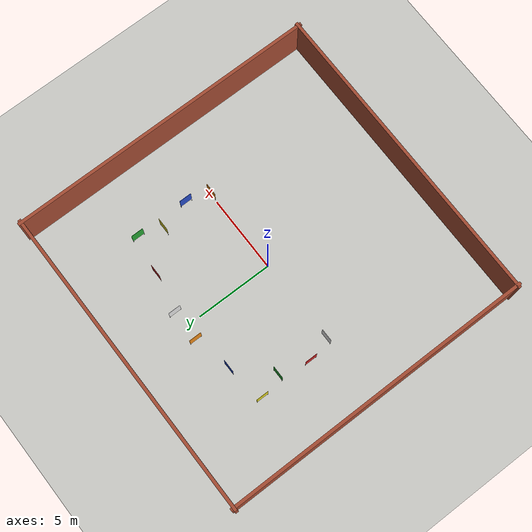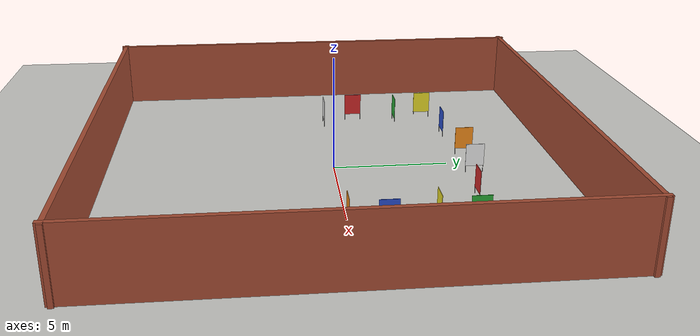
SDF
<?xml version="1.0" ?>
<!-- generated by gen_worlds.py — edit the generator, not this file -->
<sdf version="1.6">
  <world name="warehouse_w5_open_hall">
    <plugin name="gazebo_ros_state" filename="libgazebo_ros_state.so">
      <ros><namespace>/gazebo</namespace></ros>
      <update_rate>30.0</update_rate>
    </plugin>

    <physics type="ode">
      <real_time_update_rate>1000.0</real_time_update_rate>
      <max_step_size>0.001</max_step_size>
      <real_time_factor>1</real_time_factor>
    </physics>

    <scene>
      <ambient>0.28 0.28 0.28 1.0</ambient>
      <background>0.35 0.35 0.38 1.0</background>
      <shadows>true</shadows>
    </scene>

    <light name="light_centre" type="point">
      <pose>0 0 2.8 0 0 0</pose>
      <diffuse>0.32 0.32 0.30 1</diffuse>
      <specular>0.05 0.05 0.05 1</specular>
      <attenuation><range>20</range><constant>0.4</constant><linear>0.01</linear><quadratic>0.001</quadratic></attenuation>
      <cast_shadows>false</cast_shadows>
    </light>
    <light name="light_nw" type="point">
      <pose>-6 6 2.8 0 0 0</pose>
      <diffuse>0.32 0.32 0.30 1</diffuse>
      <specular>0.05 0.05 0.05 1</specular>
      <attenuation><range>20</range><constant>0.4</constant><linear>0.01</linear><quadratic>0.001</quadratic></attenuation>
      <cast_shadows>false</cast_shadows>
    </light>
    <light name="light_ne" type="point">
      <pose>6 6 2.8 0 0 0</pose>
      <diffuse>0.32 0.32 0.30 1</diffuse>
      <specular>0.05 0.05 0.05 1</specular>
      <attenuation><range>20</range><constant>0.4</constant><linear>0.01</linear><quadratic>0.001</quadratic></attenuation>
      <cast_shadows>false</cast_shadows>
    </light>
    <light name="light_sw" type="point">
      <pose>-6 -6 2.8 0 0 0</pose>
      <diffuse>0.32 0.32 0.30 1</diffuse>
      <specular>0.05 0.05 0.05 1</specular>
      <attenuation><range>20</range><constant>0.4</constant><linear>0.01</linear><quadratic>0.001</quadratic></attenuation>
      <cast_shadows>false</cast_shadows>
    </light>
    <light name="light_se" type="point">
      <pose>6 -6 2.8 0 0 0</pose>
      <diffuse>0.32 0.32 0.30 1</diffuse>
      <specular>0.05 0.05 0.05 1</specular>
      <attenuation><range>20</range><constant>0.4</constant><linear>0.01</linear><quadratic>0.001</quadratic></attenuation>
      <cast_shadows>false</cast_shadows>
    </light>

    <model name="ground_plane">
      <static>true</static>
      <link name="link">
        <collision name="collision">
          <geometry><plane><normal>0 0 1</normal><size>25 25</size></plane></geometry>
          <surface><friction><ode><mu>100</mu><mu2>50</mu2></ode></friction></surface>
        </collision>
        <visual name="visual">
          <geometry><plane><normal>0 0 1</normal><size>25 25</size></plane></geometry>
          <material><script><uri>file://media/materials/scripts/gazebo.material</uri><name>Gazebo/CeilingTiled</name></script></material>
        </visual>
      </link>
    </model>

    <model name="wall_north">
      <static>true</static>
      <pose>0 10 1.5 0 0 0</pose>
      <link name="link">
        <collision name="col"><geometry><box><size>20.4 0.2 3.0</size></box></geometry></collision>
        <visual name="vis"><geometry><box><size>20.4 0.2 3.0</size></box></geometry><material><script><uri>file://media/materials/scripts/gazebo.material</uri><name>Gazebo/Bricks</name></script></material></visual>
      </link>
    </model>
    <model name="wall_south">
      <static>true</static>
      <pose>0 -10 1.5 0 0 0</pose>
      <link name="link">
        <collision name="col"><geometry><box><size>20.4 0.2 3.0</size></box></geometry></collision>
        <visual name="vis"><geometry><box><size>20.4 0.2 3.0</size></box></geometry><material><script><uri>file://media/materials/scripts/gazebo.material</uri><name>Gazebo/Bricks</name></script></material></visual>
      </link>
    </model>
    <model name="wall_east">
      <static>true</static>
      <pose>10 0 1.5 0 0 1.5708</pose>
      <link name="link">
        <collision name="col"><geometry><box><size>20.4 0.2 3.0</size></box></geometry></collision>
        <visual name="vis"><geometry><box><size>20.4 0.2 3.0</size></box></geometry><material><script><uri>file://media/materials/scripts/gazebo.material</uri><name>Gazebo/Bricks</name></script></material></visual>
      </link>
    </model>
    <model name="wall_west">
      <static>true</static>
      <pose>-10 0 1.5 0 0 1.5708</pose>
      <link name="link">
        <collision name="col"><geometry><box><size>20.4 0.2 3.0</size></box></geometry></collision>
        <visual name="vis"><geometry><box><size>20.4 0.2 3.0</size></box></geometry><material><script><uri>file://media/materials/scripts/gazebo.material</uri><name>Gazebo/Bricks</name></script></material></visual>
      </link>
    </model>

    <model name="board_0">
      <static>true</static>
      <pose>5.5 0.0 0 0 0 0.0</pose>
      <link name="link">
        <visual name="panel"><pose>0.000 0.000 0.800 0 0 0.000</pose><geometry><box><size>0.800 0.020 1.000</size></box></geometry><material><script><uri>file://media/materials/scripts/gazebo.material</uri><name>Gazebo/Orange</name></script></material></visual>
        <visual name="leg_l"><pose>-0.380 0.000 0.150 0 0 0.000</pose><geometry><box><size>0.015 0.015 0.300</size></box></geometry><material><script><uri>file://media/materials/scripts/gazebo.material</uri><name>Gazebo/DarkGrey</name></script></material></visual>
        <visual name="leg_r"><pose>0.380 0.000 0.150 0 0 0.000</pose><geometry><box><size>0.015 0.015 0.300</size></box></geometry><material><script><uri>file://media/materials/scripts/gazebo.material</uri><name>Gazebo/DarkGrey</name></script></material></visual>
      </link>
    </model>
    <model name="board_1">
      <static>true</static>
      <pose>6.0 1.5 0 0 0 1.5708</pose>
      <link name="link">
        <visual name="panel"><pose>0.000 0.000 0.800 0 0 0.000</pose><geometry><box><size>0.800 0.020 1.000</size></box></geometry><material><script><uri>file://media/materials/scripts/gazebo.material</uri><name>Gazebo/Blue</name></script></material></visual>
        <visual name="leg_l"><pose>-0.380 0.000 0.150 0 0 0.000</pose><geometry><box><size>0.015 0.015 0.300</size></box></geometry><material><script><uri>file://media/materials/scripts/gazebo.material</uri><name>Gazebo/DarkGrey</name></script></material></visual>
        <visual name="leg_r"><pose>0.380 0.000 0.150 0 0 0.000</pose><geometry><box><size>0.015 0.015 0.300</size></box></geometry><material><script><uri>file://media/materials/scripts/gazebo.material</uri><name>Gazebo/DarkGrey</name></script></material></visual>
      </link>
    </model>
    <model name="board_2">
      <static>true</static>
      <pose>5.5 3.5 0 0 0 0.0</pose>
      <link name="link">
        <visual name="panel"><pose>0.000 0.000 0.800 0 0 0.000</pose><geometry><box><size>0.800 0.020 1.000</size></box></geometry><material><script><uri>file://media/materials/scripts/gazebo.material</uri><name>Gazebo/Yellow</name></script></material></visual>
        <visual name="leg_l"><pose>-0.380 0.000 0.150 0 0 0.000</pose><geometry><box><size>0.015 0.015 0.300</size></box></geometry><material><script><uri>file://media/materials/scripts/gazebo.material</uri><name>Gazebo/DarkGrey</name></script></material></visual>
        <visual name="leg_r"><pose>0.380 0.000 0.150 0 0 0.000</pose><geometry><box><size>0.015 0.015 0.300</size></box></geometry><material><script><uri>file://media/materials/scripts/gazebo.material</uri><name>Gazebo/DarkGrey</name></script></material></visual>
      </link>
    </model>
    <model name="board_3">
      <static>true</static>
      <pose>6.0 5.0 0 0 0 1.5708</pose>
      <link name="link">
        <visual name="panel"><pose>0.000 0.000 0.800 0 0 0.000</pose><geometry><box><size>0.800 0.020 1.000</size></box></geometry><material><script><uri>file://media/materials/scripts/gazebo.material</uri><name>Gazebo/Green</name></script></material></visual>
        <visual name="leg_l"><pose>-0.380 0.000 0.150 0 0 0.000</pose><geometry><box><size>0.015 0.015 0.300</size></box></geometry><material><script><uri>file://media/materials/scripts/gazebo.material</uri><name>Gazebo/DarkGrey</name></script></material></visual>
        <visual name="leg_r"><pose>0.380 0.000 0.150 0 0 0.000</pose><geometry><box><size>0.015 0.015 0.300</size></box></geometry><material><script><uri>file://media/materials/scripts/gazebo.material</uri><name>Gazebo/DarkGrey</name></script></material></visual>
      </link>
    </model>
    <model name="board_4">
      <static>true</static>
      <pose>3.5 5.5 0 0 0 0.0</pose>
      <link name="link">
        <visual name="panel"><pose>0.000 0.000 0.800 0 0 0.000</pose><geometry><box><size>0.800 0.020 1.000</size></box></geometry><material><script><uri>file://media/materials/scripts/gazebo.material</uri><name>Gazebo/Red</name></script></material></visual>
        <visual name="leg_l"><pose>-0.380 0.000 0.150 0 0 0.000</pose><geometry><box><size>0.015 0.015 0.300</size></box></geometry><material><script><uri>file://media/materials/scripts/gazebo.material</uri><name>Gazebo/DarkGrey</name></script></material></visual>
        <visual name="leg_r"><pose>0.380 0.000 0.150 0 0 0.000</pose><geometry><box><size>0.015 0.015 0.300</size></box></geometry><material><script><uri>file://media/materials/scripts/gazebo.material</uri><name>Gazebo/DarkGrey</name></script></material></visual>
      </link>
    </model>
    <model name="board_5">
      <static>true</static>
      <pose>1.0 6.0 0 0 0 1.5708</pose>
      <link name="link">
        <visual name="panel"><pose>0.000 0.000 0.800 0 0 0.000</pose><geometry><box><size>0.800 0.020 1.000</size></box></geometry><material><script><uri>file://media/materials/scripts/gazebo.material</uri><name>Gazebo/White</name></script></material></visual>
        <visual name="leg_l"><pose>-0.380 0.000 0.150 0 0 0.000</pose><geometry><box><size>0.015 0.015 0.300</size></box></geometry><material><script><uri>file://media/materials/scripts/gazebo.material</uri><name>Gazebo/DarkGrey</name></script></material></visual>
        <visual name="leg_r"><pose>0.380 0.000 0.150 0 0 0.000</pose><geometry><box><size>0.015 0.015 0.300</size></box></geometry><material><script><uri>file://media/materials/scripts/gazebo.material</uri><name>Gazebo/DarkGrey</name></script></material></visual>
      </link>
    </model>
    <model name="board_6">
      <static>true</static>
      <pose>-1.0 6.0 0 0 0 1.5708</pose>
      <link name="link">
        <visual name="panel"><pose>0.000 0.000 0.800 0 0 0.000</pose><geometry><box><size>0.800 0.020 1.000</size></box></geometry><material><script><uri>file://media/materials/scripts/gazebo.material</uri><name>Gazebo/Orange</name></script></material></visual>
        <visual name="leg_l"><pose>-0.380 0.000 0.150 0 0 0.000</pose><geometry><box><size>0.015 0.015 0.300</size></box></geometry><material><script><uri>file://media/materials/scripts/gazebo.material</uri><name>Gazebo/DarkGrey</name></script></material></visual>
        <visual name="leg_r"><pose>0.380 0.000 0.150 0 0 0.000</pose><geometry><box><size>0.015 0.015 0.300</size></box></geometry><material><script><uri>file://media/materials/scripts/gazebo.material</uri><name>Gazebo/DarkGrey</name></script></material></visual>
      </link>
    </model>
    <model name="board_7">
      <static>true</static>
      <pose>-3.5 5.5 0 0 0 0.0</pose>
      <link name="link">
        <visual name="panel"><pose>0.000 0.000 0.800 0 0 0.000</pose><geometry><box><size>0.800 0.020 1.000</size></box></geometry><material><script><uri>file://media/materials/scripts/gazebo.material</uri><name>Gazebo/Blue</name></script></material></visual>
        <visual name="leg_l"><pose>-0.380 0.000 0.150 0 0 0.000</pose><geometry><box><size>0.015 0.015 0.300</size></box></geometry><material><script><uri>file://media/materials/scripts/gazebo.material</uri><name>Gazebo/DarkGrey</name></script></material></visual>
        <visual name="leg_r"><pose>0.380 0.000 0.150 0 0 0.000</pose><geometry><box><size>0.015 0.015 0.300</size></box></geometry><material><script><uri>file://media/materials/scripts/gazebo.material</uri><name>Gazebo/DarkGrey</name></script></material></visual>
      </link>
    </model>
    <model name="board_8">
      <static>true</static>
      <pose>-6.0 5.0 0 0 0 1.5708</pose>
      <link name="link">
        <visual name="panel"><pose>0.000 0.000 0.800 0 0 0.000</pose><geometry><box><size>0.800 0.020 1.000</size></box></geometry><material><script><uri>file://media/materials/scripts/gazebo.material</uri><name>Gazebo/Yellow</name></script></material></visual>
        <visual name="leg_l"><pose>-0.380 0.000 0.150 0 0 0.000</pose><geometry><box><size>0.015 0.015 0.300</size></box></geometry><material><script><uri>file://media/materials/scripts/gazebo.material</uri><name>Gazebo/DarkGrey</name></script></material></visual>
        <visual name="leg_r"><pose>0.380 0.000 0.150 0 0 0.000</pose><geometry><box><size>0.015 0.015 0.300</size></box></geometry><material><script><uri>file://media/materials/scripts/gazebo.material</uri><name>Gazebo/DarkGrey</name></script></material></visual>
      </link>
    </model>
    <model name="board_9">
      <static>true</static>
      <pose>-5.5 3.5 0 0 0 0.0</pose>
      <link name="link">
        <visual name="panel"><pose>0.000 0.000 0.800 0 0 0.000</pose><geometry><box><size>0.800 0.020 1.000</size></box></geometry><material><script><uri>file://media/materials/scripts/gazebo.material</uri><name>Gazebo/Green</name></script></material></visual>
        <visual name="leg_l"><pose>-0.380 0.000 0.150 0 0 0.000</pose><geometry><box><size>0.015 0.015 0.300</size></box></geometry><material><script><uri>file://media/materials/scripts/gazebo.material</uri><name>Gazebo/DarkGrey</name></script></material></visual>
        <visual name="leg_r"><pose>0.380 0.000 0.150 0 0 0.000</pose><geometry><box><size>0.015 0.015 0.300</size></box></geometry><material><script><uri>file://media/materials/scripts/gazebo.material</uri><name>Gazebo/DarkGrey</name></script></material></visual>
      </link>
    </model>
    <model name="board_10">
      <static>true</static>
      <pose>-6.0 1.5 0 0 0 1.5708</pose>
      <link name="link">
        <visual name="panel"><pose>0.000 0.000 0.800 0 0 0.000</pose><geometry><box><size>0.800 0.020 1.000</size></box></geometry><material><script><uri>file://media/materials/scripts/gazebo.material</uri><name>Gazebo/Red</name></script></material></visual>
        <visual name="leg_l"><pose>-0.380 0.000 0.150 0 0 0.000</pose><geometry><box><size>0.015 0.015 0.300</size></box></geometry><material><script><uri>file://media/materials/scripts/gazebo.material</uri><name>Gazebo/DarkGrey</name></script></material></visual>
        <visual name="leg_r"><pose>0.380 0.000 0.150 0 0 0.000</pose><geometry><box><size>0.015 0.015 0.300</size></box></geometry><material><script><uri>file://media/materials/scripts/gazebo.material</uri><name>Gazebo/DarkGrey</name></script></material></visual>
      </link>
    </model>
    <model name="board_11">
      <static>true</static>
      <pose>-5.5 0.0 0 0 0 0.0</pose>
      <link name="link">
        <visual name="panel"><pose>0.000 0.000 0.800 0 0 0.000</pose><geometry><box><size>0.800 0.020 1.000</size></box></geometry><material><script><uri>file://media/materials/scripts/gazebo.material</uri><name>Gazebo/White</name></script></material></visual>
        <visual name="leg_l"><pose>-0.380 0.000 0.150 0 0 0.000</pose><geometry><box><size>0.015 0.015 0.300</size></box></geometry><material><script><uri>file://media/materials/scripts/gazebo.material</uri><name>Gazebo/DarkGrey</name></script></material></visual>
        <visual name="leg_r"><pose>0.380 0.000 0.150 0 0 0.000</pose><geometry><box><size>0.015 0.015 0.300</size></box></geometry><material><script><uri>file://media/materials/scripts/gazebo.material</uri><name>Gazebo/DarkGrey</name></script></material></visual>
      </link>
    </model>

    <model name="overview_camera">
      <static>true</static>
      <pose>0 0 17 0 1.5708 0</pose>
      <link name="link">
        <sensor name="overview" type="camera">
          <always_on>true</always_on>
          <update_rate>2</update_rate>
          <visualize>false</visualize>
          <camera name="overview">
            <horizontal_fov>1.25</horizontal_fov>
            <image><width>1280</width><height>720</height><format>R8G8B8</format></image>
            <clip><near>0.5</near><far>40</far></clip>
          </camera>
          <plugin name="overview_driver" filename="libgazebo_ros_camera.so">
            <ros><namespace>/</namespace></ros>
            <camera_name>overview</camera_name>
            <frame_name>overview_link</frame_name>
          </plugin>
        </sensor>
      </link>
    </model>

  </world>
</sdf>
